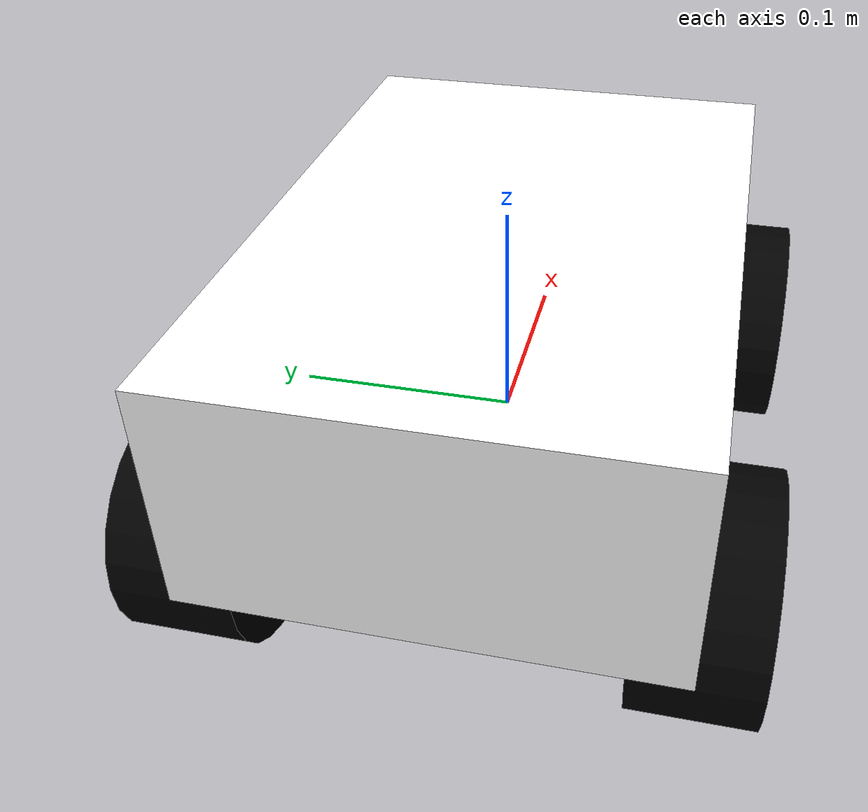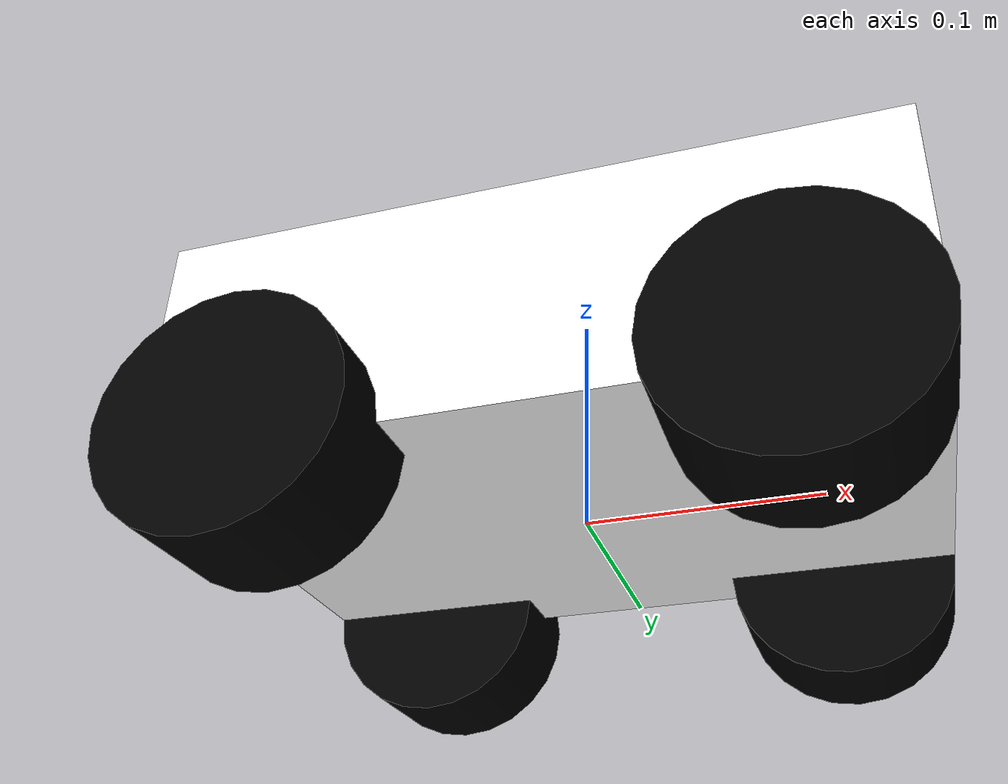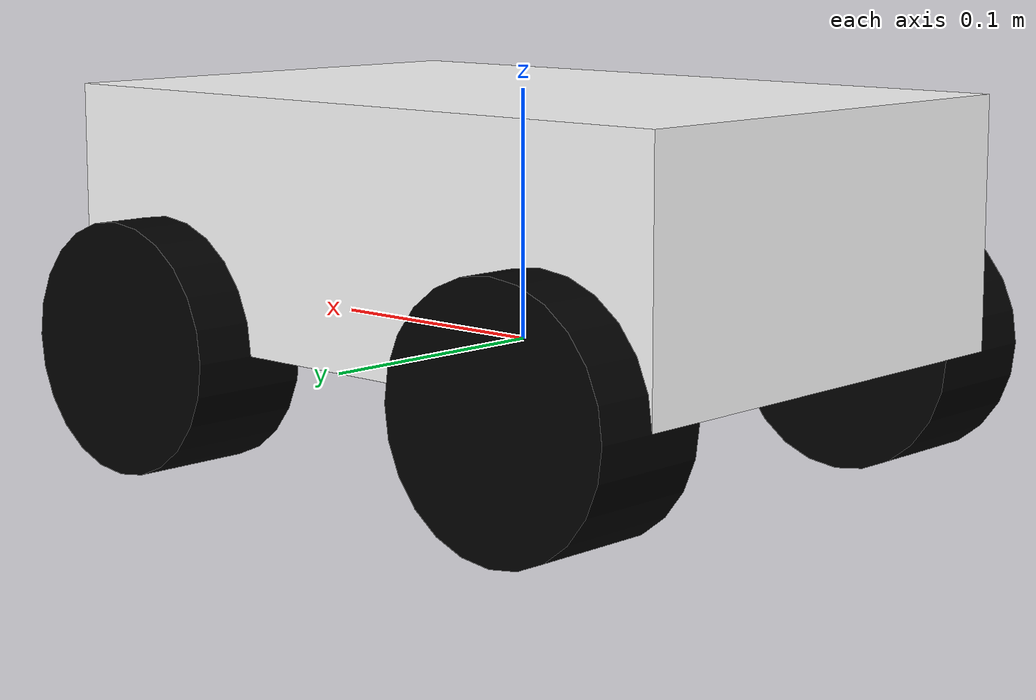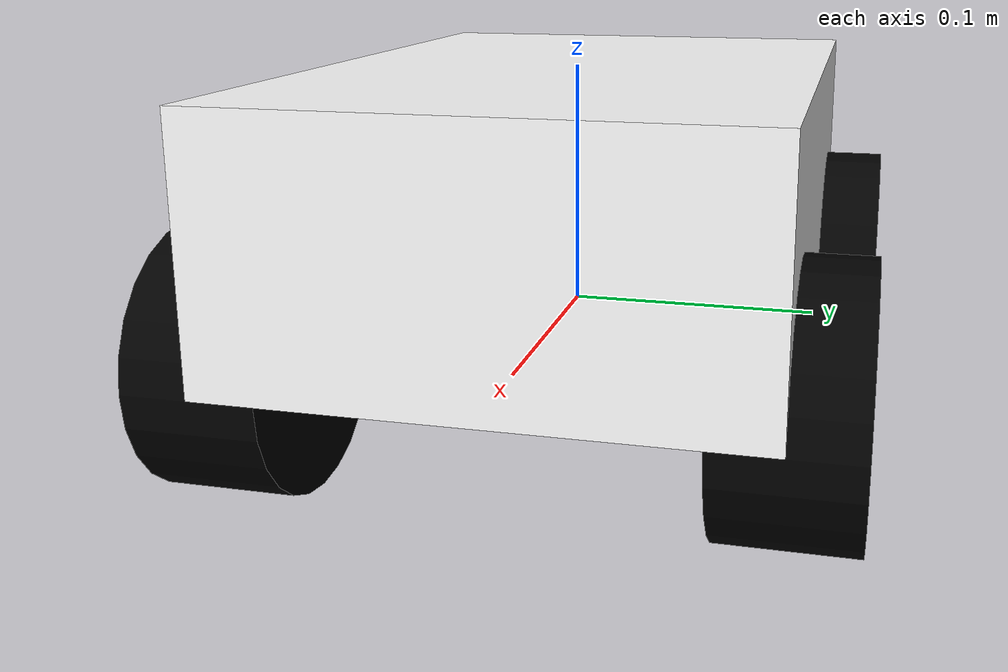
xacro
<?xml version="1.0"?>
<robot xmlns:xacro="http://www.ros.org/wiki/xacro" name="robot_xacro">
<xacro:include filename="$(find ass_2)/urdf/robot.gazebo"/>

	<xacro:property name="length_wheel" value="0.05" />
	<xacro:property name="radius_wheel" value="0.05" />

	<xacro:macro name="default_inertial" params="mass">
               <inertial>
                       <mass value="${mass}" />
                       <inertia ixx="1.0" ixy="0.0" ixz="0.0"
                                iyy="1.0" iyz="0.0"
                                izz="1.0" />
               </inertial>
	</xacro:macro>

        <xacro:macro name="wheel_geometry">
		<geometry>
       			<cylinder length="${length_wheel}" radius="${radius_wheel}"/>
     		</geometry>
	</xacro:macro>

	<link name="base_link">
   		<visual>
     			<geometry>
       				<box size="0.2 .3 .1"/>
     			</geometry>
			<origin rpy="0 0 1.5707" xyz="0 0 0.05"/>
			<material name="white">
				<color rgba="1 1 1 1"/>
			</material>
   		</visual>
		<collision>
			<geometry>
       				<box size="0.2 .3 0.1"/>
			</geometry>
		</collision>
		<xacro:default_inertial mass="10"/>

 	</link>

 	<link name="wheel_1">
   		<visual>
     			<xacro:wheel_geometry />
			<origin rpy="0 1.5707 1.5707" xyz="0.0 0.0 0"/>
   			<material name="black">
				<color rgba="0 0 0 1"/>
			</material>
		</visual>
		<collision>
			<xacro:wheel_geometry />
		</collision>
		<xacro:default_inertial mass="1"/>
 	</link>

 	<link name="wheel_2">
   		<visual>
     			<xacro:wheel_geometry />
			<origin rpy="0 1.5707 1.5707" xyz="-0.0 0.0 0"/>
   			<material name="black"/>
   		</visual>
		<collision>
			<xacro:wheel_geometry />
		</collision>
		<xacro:default_inertial mass="1"/>
 	</link>

 	<link name="wheel_3">
   		<visual>
 			<xacro:wheel_geometry />
			<origin rpy="0 1.5707 1.5707" xyz="0.0 -0.0 0"/>
   			<material name="black"/>
   		</visual>
		<collision>
			<xacro:wheel_geometry />
		</collision>
		<xacro:default_inertial mass="1"/>
 	</link>

 	<link name="wheel_4">
   		<visual>
  			 <xacro:wheel_geometry />
			<origin rpy="0 1.5707 1.5707" xyz="-0.0 -0.0 0"/>
   			<material name="black"/>
   		</visual>
		<collision>
			<xacro:wheel_geometry />
		</collision>
		<xacro:default_inertial mass="1"/>
 	</link>

 	<joint name="base_to_wheel1" type="continuous">
		<parent link="base_link"/>
		<child link="wheel_1"/>
                <axis xyz="1 0 0"/>
		<origin xyz="0.1 0.1 0"/>
	</joint>

	<joint name="base_to_wheel2" type="continuous">
		<parent link="base_link"/>
		<child link="wheel_2"/>
                <axis xyz="1 0 0"/>
		<origin xyz="-0.1 0.1 0"/>
	</joint>

	<joint name="base_to_wheel3" type="continuous">
		<parent link="base_link"/>
		<child link="wheel_3"/>
                <axis xyz="1 0 0"/>
		<origin xyz="0.1 -0.1 0"/>
	</joint>

	<joint name="base_to_wheel4" type="continuous">
		<parent link="base_link"/>
		<child link="wheel_4"/>
                <axis xyz="1 0 0"/>
		<origin xyz="-0.1 -0.1 0"/>
	</joint>

	<!-- Planar move -->
	<gazebo>
	    <plugin name="object_controller" filename="libgazebo_ros_planar_move.so">
	      <commandTopic>cmd_vel</commandTopic>
	      <odometryTopic>odom</odometryTopic>
	      <odometryFrame>odom</odometryFrame>
	      <odometryRate>20.0</odometryRate>
	      <robotBaseFrame>base_link</robotBaseFrame>
	    </plugin>
	</gazebo>

</robot>
